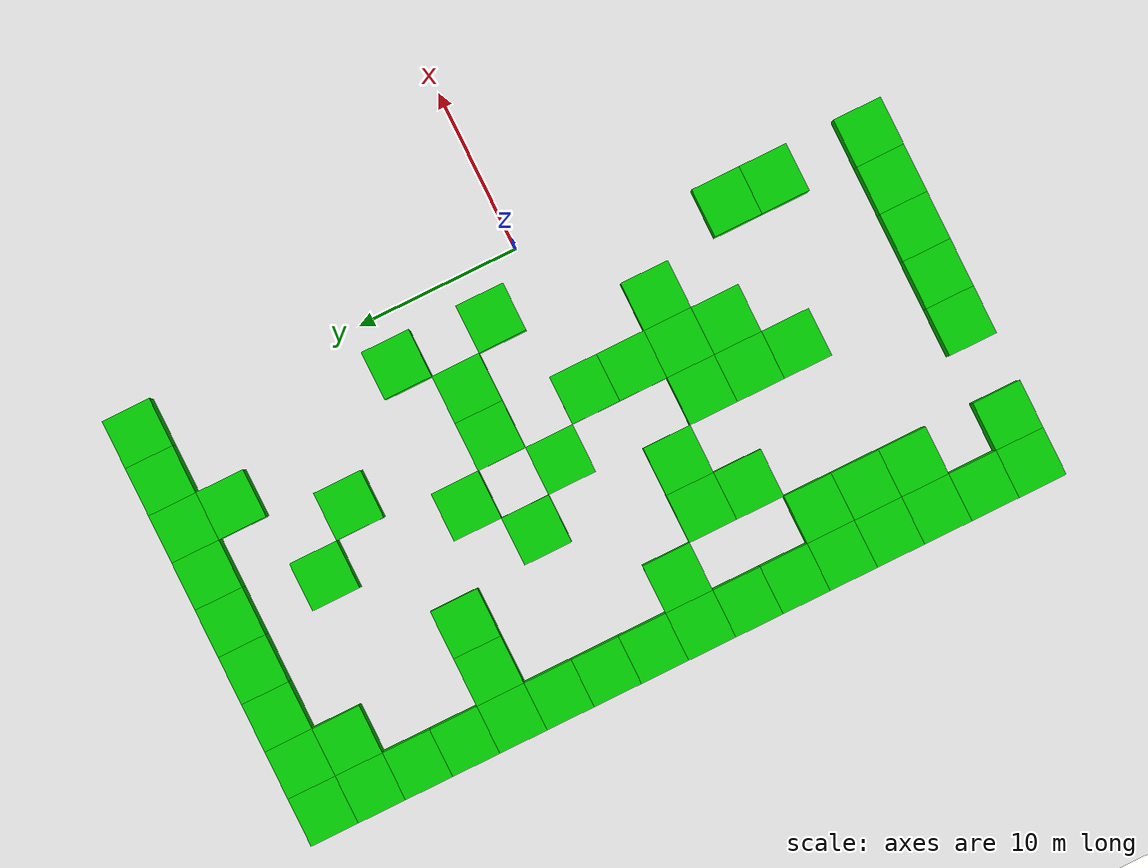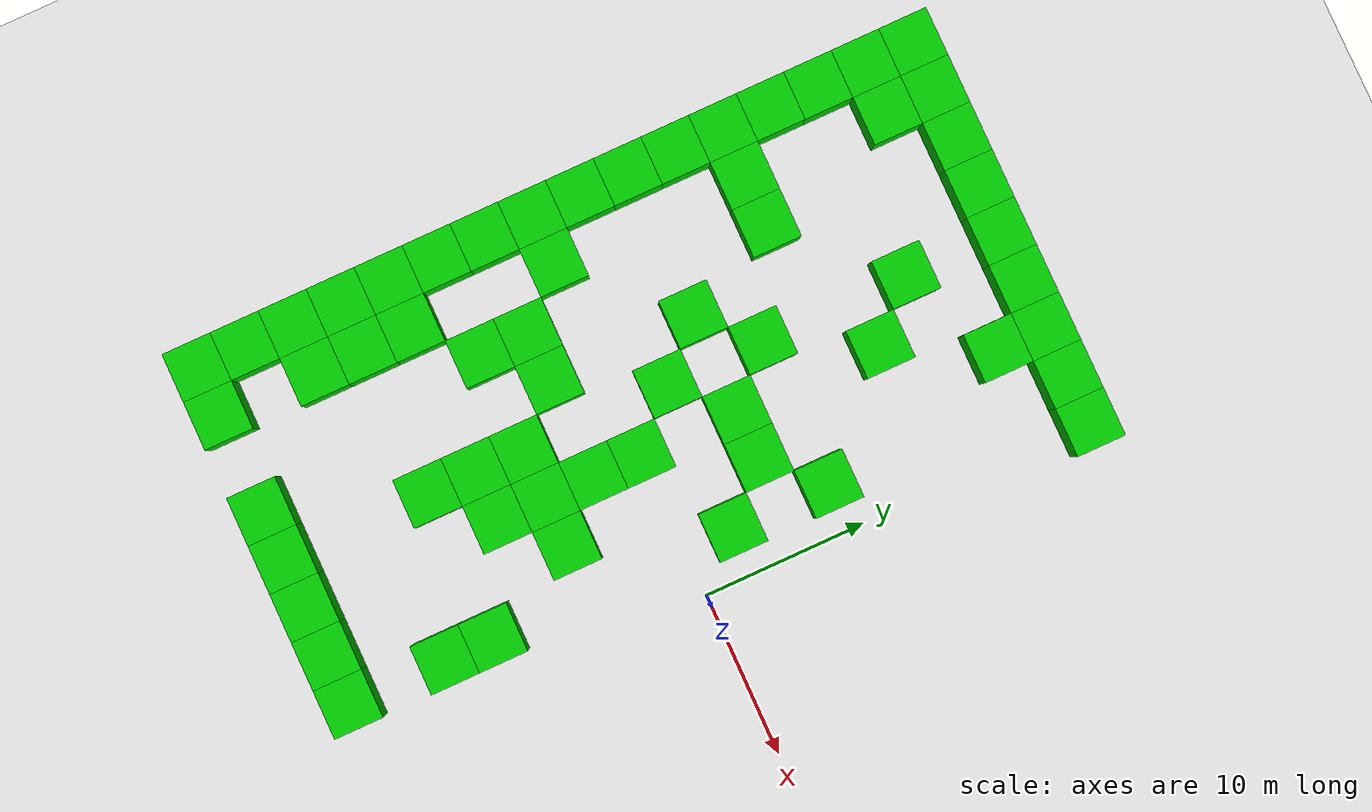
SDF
<sdf version="1.6">
 <world name="generated_maze">
  <model name="ground_plane">
   <static>true</static>
   <link name="link">
    <collision name="collision">
     <geometry><plane><normal>0 0 1</normal><size>300 300</size></plane></geometry>
    </collision>
    <visual name="visual">
     <geometry><plane><normal>0 0 1</normal><size>300 300</size></plane></geometry>
     <material>
      <ambient>0.9 0.9 0.9 1</ambient>
      <diffuse>0.9 0.9 0.9 1</diffuse>
      <specular>0.3 0.3 0.3 1</specular>
     </material>
    </visual>
   </link>
  </model>
  <model name="wall_0_0">
   <static>true</static>
   <pose>-24.0 24.0 1.00 0 0 0</pose>
   <link name="link">
    <collision name="collision"><geometry><box><size>3.0 3.0 2.0</size></box></geometry></collision>
    <visual name="visual">
     <geometry><box><size>3.0 3.0 2.0</size></box></geometry>
     <material>
      <ambient>0.0 0.8 0.0 1</ambient>
      <diffuse>0.0 0.8 0.0 1</diffuse>
      <specular>0.1 0.1 0.1 1</specular>
     </material>
    </visual>
   </link>
  </model>
  <model name="wall_0_1">
   <static>true</static>
   <pose>-21.0 24.0 1.00 0 0 0</pose>
   <link name="link">
    <collision name="collision"><geometry><box><size>3.0 3.0 2.0</size></box></geometry></collision>
    <visual name="visual">
     <geometry><box><size>3.0 3.0 2.0</size></box></geometry>
     <material>
      <ambient>0.0 0.8 0.0 1</ambient>
      <diffuse>0.0 0.8 0.0 1</diffuse>
      <specular>0.1 0.1 0.1 1</specular>
     </material>
    </visual>
   </link>
  </model>
  <model name="wall_0_2">
   <static>true</static>
   <pose>-18.0 24.0 1.00 0 0 0</pose>
   <link name="link">
    <collision name="collision"><geometry><box><size>3.0 3.0 2.0</size></box></geometry></collision>
    <visual name="visual">
     <geometry><box><size>3.0 3.0 2.0</size></box></geometry>
     <material>
      <ambient>0.0 0.8 0.0 1</ambient>
      <diffuse>0.0 0.8 0.0 1</diffuse>
      <specular>0.1 0.1 0.1 1</specular>
     </material>
    </visual>
   </link>
  </model>
  <model name="wall_0_3">
   <static>true</static>
   <pose>-15.0 24.0 1.00 0 0 0</pose>
   <link name="link">
    <collision name="collision"><geometry><box><size>3.0 3.0 2.0</size></box></geometry></collision>
    <visual name="visual">
     <geometry><box><size>3.0 3.0 2.0</size></box></geometry>
     <material>
      <ambient>0.0 0.8 0.0 1</ambient>
      <diffuse>0.0 0.8 0.0 1</diffuse>
      <specular>0.1 0.1 0.1 1</specular>
     </material>
    </visual>
   </link>
  </model>
  <model name="wall_0_4">
   <static>true</static>
   <pose>-12.0 24.0 1.00 0 0 0</pose>
   <link name="link">
    <collision name="collision"><geometry><box><size>3.0 3.0 2.0</size></box></geometry></collision>
    <visual name="visual">
     <geometry><box><size>3.0 3.0 2.0</size></box></geometry>
     <material>
      <ambient>0.0 0.8 0.0 1</ambient>
      <diffuse>0.0 0.8 0.0 1</diffuse>
      <specular>0.1 0.1 0.1 1</specular>
     </material>
    </visual>
   </link>
  </model>
  <model name="wall_0_5">
   <static>true</static>
   <pose>-9.0 24.0 1.00 0 0 0</pose>
   <link name="link">
    <collision name="collision"><geometry><box><size>3.0 3.0 2.0</size></box></geometry></collision>
    <visual name="visual">
     <geometry><box><size>3.0 3.0 2.0</size></box></geometry>
     <material>
      <ambient>0.0 0.8 0.0 1</ambient>
      <diffuse>0.0 0.8 0.0 1</diffuse>
      <specular>0.1 0.1 0.1 1</specular>
     </material>
    </visual>
   </link>
  </model>
  <model name="wall_0_6">
   <static>true</static>
   <pose>-6.0 24.0 1.00 0 0 0</pose>
   <link name="link">
    <collision name="collision"><geometry><box><size>3.0 3.0 2.0</size></box></geometry></collision>
    <visual name="visual">
     <geometry><box><size>3.0 3.0 2.0</size></box></geometry>
     <material>
      <ambient>0.0 0.8 0.0 1</ambient>
      <diffuse>0.0 0.8 0.0 1</diffuse>
      <specular>0.1 0.1 0.1 1</specular>
     </material>
    </visual>
   </link>
  </model>
  <model name="wall_0_7">
   <static>true</static>
   <pose>-3.0 24.0 1.00 0 0 0</pose>
   <link name="link">
    <collision name="collision"><geometry><box><size>3.0 3.0 2.0</size></box></geometry></collision>
    <visual name="visual">
     <geometry><box><size>3.0 3.0 2.0</size></box></geometry>
     <material>
      <ambient>0.0 0.8 0.0 1</ambient>
      <diffuse>0.0 0.8 0.0 1</diffuse>
      <specular>0.1 0.1 0.1 1</specular>
     </material>
    </visual>
   </link>
  </model>
  <model name="wall_0_8">
   <static>true</static>
   <pose>0.0 24.0 1.00 0 0 0</pose>
   <link name="link">
    <collision name="collision"><geometry><box><size>3.0 3.0 2.0</size></box></geometry></collision>
    <visual name="visual">
     <geometry><box><size>3.0 3.0 2.0</size></box></geometry>
     <material>
      <ambient>0.0 0.8 0.0 1</ambient>
      <diffuse>0.0 0.8 0.0 1</diffuse>
      <specular>0.1 0.1 0.1 1</specular>
     </material>
    </visual>
   </link>
  </model>
  <model name="wall_1_0">
   <static>true</static>
   <pose>-24.0 21.0 1.00 0 0 0</pose>
   <link name="link">
    <collision name="collision"><geometry><box><size>3.0 3.0 2.0</size></box></geometry></collision>
    <visual name="visual">
     <geometry><box><size>3.0 3.0 2.0</size></box></geometry>
     <material>
      <ambient>0.0 0.8 0.0 1</ambient>
      <diffuse>0.0 0.8 0.0 1</diffuse>
      <specular>0.1 0.1 0.1 1</specular>
     </material>
    </visual>
   </link>
  </model>
  <model name="wall_1_1">
   <static>true</static>
   <pose>-21.0 21.0 1.00 0 0 0</pose>
   <link name="link">
    <collision name="collision"><geometry><box><size>3.0 3.0 2.0</size></box></geometry></collision>
    <visual name="visual">
     <geometry><box><size>3.0 3.0 2.0</size></box></geometry>
     <material>
      <ambient>0.0 0.8 0.0 1</ambient>
      <diffuse>0.0 0.8 0.0 1</diffuse>
      <specular>0.1 0.1 0.1 1</specular>
     </material>
    </visual>
   </link>
  </model>
  <model name="wall_1_6">
   <static>true</static>
   <pose>-6.0 21.0 1.00 0 0 0</pose>
   <link name="link">
    <collision name="collision"><geometry><box><size>3.0 3.0 2.0</size></box></geometry></collision>
    <visual name="visual">
     <geometry><box><size>3.0 3.0 2.0</size></box></geometry>
     <material>
      <ambient>0.0 0.8 0.0 1</ambient>
      <diffuse>0.0 0.8 0.0 1</diffuse>
      <specular>0.1 0.1 0.1 1</specular>
     </material>
    </visual>
   </link>
  </model>
  <model name="wall_2_0">
   <static>true</static>
   <pose>-24.0 18.0 1.00 0 0 0</pose>
   <link name="link">
    <collision name="collision"><geometry><box><size>3.0 3.0 2.0</size></box></geometry></collision>
    <visual name="visual">
     <geometry><box><size>3.0 3.0 2.0</size></box></geometry>
     <material>
      <ambient>0.0 0.8 0.0 1</ambient>
      <diffuse>0.0 0.8 0.0 1</diffuse>
      <specular>0.1 0.1 0.1 1</specular>
     </material>
    </visual>
   </link>
  </model>
  <model name="wall_2_4">
   <static>true</static>
   <pose>-12.0 18.0 1.00 0 0 0</pose>
   <link name="link">
    <collision name="collision"><geometry><box><size>3.0 3.0 2.0</size></box></geometry></collision>
    <visual name="visual">
     <geometry><box><size>3.0 3.0 2.0</size></box></geometry>
     <material>
      <ambient>0.0 0.8 0.0 1</ambient>
      <diffuse>0.0 0.8 0.0 1</diffuse>
      <specular>0.1 0.1 0.1 1</specular>
     </material>
    </visual>
   </link>
  </model>
  <model name="wall_3_0">
   <static>true</static>
   <pose>-24.0 15.0 1.00 0 0 0</pose>
   <link name="link">
    <collision name="collision"><geometry><box><size>3.0 3.0 2.0</size></box></geometry></collision>
    <visual name="visual">
     <geometry><box><size>3.0 3.0 2.0</size></box></geometry>
     <material>
      <ambient>0.0 0.8 0.0 1</ambient>
      <diffuse>0.0 0.8 0.0 1</diffuse>
      <specular>0.1 0.1 0.1 1</specular>
     </material>
    </visual>
   </link>
  </model>
  <model name="wall_3_5">
   <static>true</static>
   <pose>-9.0 15.0 1.00 0 0 0</pose>
   <link name="link">
    <collision name="collision"><geometry><box><size>3.0 3.0 2.0</size></box></geometry></collision>
    <visual name="visual">
     <geometry><box><size>3.0 3.0 2.0</size></box></geometry>
     <material>
      <ambient>0.0 0.8 0.0 1</ambient>
      <diffuse>0.0 0.8 0.0 1</diffuse>
      <specular>0.1 0.1 0.1 1</specular>
     </material>
    </visual>
   </link>
  </model>
  <model name="wall_4_0">
   <static>true</static>
   <pose>-24.0 12.0 1.00 0 0 0</pose>
   <link name="link">
    <collision name="collision"><geometry><box><size>3.0 3.0 2.0</size></box></geometry></collision>
    <visual name="visual">
     <geometry><box><size>3.0 3.0 2.0</size></box></geometry>
     <material>
      <ambient>0.0 0.8 0.0 1</ambient>
      <diffuse>0.0 0.8 0.0 1</diffuse>
      <specular>0.1 0.1 0.1 1</specular>
     </material>
    </visual>
   </link>
  </model>
  <model name="wall_4_1">
   <static>true</static>
   <pose>-21.0 12.0 1.00 0 0 0</pose>
   <link name="link">
    <collision name="collision"><geometry><box><size>3.0 3.0 2.0</size></box></geometry></collision>
    <visual name="visual">
     <geometry><box><size>3.0 3.0 2.0</size></box></geometry>
     <material>
      <ambient>0.0 0.8 0.0 1</ambient>
      <diffuse>0.0 0.8 0.0 1</diffuse>
      <specular>0.1 0.1 0.1 1</specular>
     </material>
    </visual>
   </link>
  </model>
  <model name="wall_4_2">
   <static>true</static>
   <pose>-18.0 12.0 1.00 0 0 0</pose>
   <link name="link">
    <collision name="collision"><geometry><box><size>3.0 3.0 2.0</size></box></geometry></collision>
    <visual name="visual">
     <geometry><box><size>3.0 3.0 2.0</size></box></geometry>
     <material>
      <ambient>0.0 0.8 0.0 1</ambient>
      <diffuse>0.0 0.8 0.0 1</diffuse>
      <specular>0.1 0.1 0.1 1</specular>
     </material>
    </visual>
   </link>
  </model>
  <model name="wall_5_0">
   <static>true</static>
   <pose>-24.0 9.0 1.00 0 0 0</pose>
   <link name="link">
    <collision name="collision"><geometry><box><size>3.0 3.0 2.0</size></box></geometry></collision>
    <visual name="visual">
     <geometry><box><size>3.0 3.0 2.0</size></box></geometry>
     <material>
      <ambient>0.0 0.8 0.0 1</ambient>
      <diffuse>0.0 0.8 0.0 1</diffuse>
      <specular>0.1 0.1 0.1 1</specular>
     </material>
    </visual>
   </link>
  </model>
  <model name="wall_5_4">
   <static>true</static>
   <pose>-12.0 9.0 1.00 0 0 0</pose>
   <link name="link">
    <collision name="collision"><geometry><box><size>3.0 3.0 2.0</size></box></geometry></collision>
    <visual name="visual">
     <geometry><box><size>3.0 3.0 2.0</size></box></geometry>
     <material>
      <ambient>0.0 0.8 0.0 1</ambient>
      <diffuse>0.0 0.8 0.0 1</diffuse>
      <specular>0.1 0.1 0.1 1</specular>
     </material>
    </visual>
   </link>
  </model>
  <model name="wall_5_7">
   <static>true</static>
   <pose>-3.0 9.0 1.00 0 0 0</pose>
   <link name="link">
    <collision name="collision"><geometry><box><size>3.0 3.0 2.0</size></box></geometry></collision>
    <visual name="visual">
     <geometry><box><size>3.0 3.0 2.0</size></box></geometry>
     <material>
      <ambient>0.0 0.8 0.0 1</ambient>
      <diffuse>0.0 0.8 0.0 1</diffuse>
      <specular>0.1 0.1 0.1 1</specular>
     </material>
    </visual>
   </link>
  </model>
  <model name="wall_6_0">
   <static>true</static>
   <pose>-24.0 6.0 1.00 0 0 0</pose>
   <link name="link">
    <collision name="collision"><geometry><box><size>3.0 3.0 2.0</size></box></geometry></collision>
    <visual name="visual">
     <geometry><box><size>3.0 3.0 2.0</size></box></geometry>
     <material>
      <ambient>0.0 0.8 0.0 1</ambient>
      <diffuse>0.0 0.8 0.0 1</diffuse>
      <specular>0.1 0.1 0.1 1</specular>
     </material>
    </visual>
   </link>
  </model>
  <model name="wall_6_3">
   <static>true</static>
   <pose>-15.0 6.0 1.00 0 0 0</pose>
   <link name="link">
    <collision name="collision"><geometry><box><size>3.0 3.0 2.0</size></box></geometry></collision>
    <visual name="visual">
     <geometry><box><size>3.0 3.0 2.0</size></box></geometry>
     <material>
      <ambient>0.0 0.8 0.0 1</ambient>
      <diffuse>0.0 0.8 0.0 1</diffuse>
      <specular>0.1 0.1 0.1 1</specular>
     </material>
    </visual>
   </link>
  </model>
  <model name="wall_6_5">
   <static>true</static>
   <pose>-9.0 6.0 1.00 0 0 0</pose>
   <link name="link">
    <collision name="collision"><geometry><box><size>3.0 3.0 2.0</size></box></geometry></collision>
    <visual name="visual">
     <geometry><box><size>3.0 3.0 2.0</size></box></geometry>
     <material>
      <ambient>0.0 0.8 0.0 1</ambient>
      <diffuse>0.0 0.8 0.0 1</diffuse>
      <specular>0.1 0.1 0.1 1</specular>
     </material>
    </visual>
   </link>
  </model>
  <model name="wall_6_6">
   <static>true</static>
   <pose>-6.0 6.0 1.00 0 0 0</pose>
   <link name="link">
    <collision name="collision"><geometry><box><size>3.0 3.0 2.0</size></box></geometry></collision>
    <visual name="visual">
     <geometry><box><size>3.0 3.0 2.0</size></box></geometry>
     <material>
      <ambient>0.0 0.8 0.0 1</ambient>
      <diffuse>0.0 0.8 0.0 1</diffuse>
      <specular>0.1 0.1 0.1 1</specular>
     </material>
    </visual>
   </link>
  </model>
  <model name="wall_7_0">
   <static>true</static>
   <pose>-24.0 3.0 1.00 0 0 0</pose>
   <link name="link">
    <collision name="collision"><geometry><box><size>3.0 3.0 2.0</size></box></geometry></collision>
    <visual name="visual">
     <geometry><box><size>3.0 3.0 2.0</size></box></geometry>
     <material>
      <ambient>0.0 0.8 0.0 1</ambient>
      <diffuse>0.0 0.8 0.0 1</diffuse>
      <specular>0.1 0.1 0.1 1</specular>
     </material>
    </visual>
   </link>
  </model>
  <model name="wall_7_4">
   <static>true</static>
   <pose>-12.0 3.0 1.00 0 0 0</pose>
   <link name="link">
    <collision name="collision"><geometry><box><size>3.0 3.0 2.0</size></box></geometry></collision>
    <visual name="visual">
     <geometry><box><size>3.0 3.0 2.0</size></box></geometry>
     <material>
      <ambient>0.0 0.8 0.0 1</ambient>
      <diffuse>0.0 0.8 0.0 1</diffuse>
      <specular>0.1 0.1 0.1 1</specular>
     </material>
    </visual>
   </link>
  </model>
  <model name="wall_7_7">
   <static>true</static>
   <pose>-3.0 3.0 1.00 0 0 0</pose>
   <link name="link">
    <collision name="collision"><geometry><box><size>3.0 3.0 2.0</size></box></geometry></collision>
    <visual name="visual">
     <geometry><box><size>3.0 3.0 2.0</size></box></geometry>
     <material>
      <ambient>0.0 0.8 0.0 1</ambient>
      <diffuse>0.0 0.8 0.0 1</diffuse>
      <specular>0.1 0.1 0.1 1</specular>
     </material>
    </visual>
   </link>
  </model>
  <model name="wall_8_0">
   <static>true</static>
   <pose>-24.0 0.0 1.00 0 0 0</pose>
   <link name="link">
    <collision name="collision"><geometry><box><size>3.0 3.0 2.0</size></box></geometry></collision>
    <visual name="visual">
     <geometry><box><size>3.0 3.0 2.0</size></box></geometry>
     <material>
      <ambient>0.0 0.8 0.0 1</ambient>
      <diffuse>0.0 0.8 0.0 1</diffuse>
      <specular>0.1 0.1 0.1 1</specular>
     </material>
    </visual>
   </link>
  </model>
  <model name="wall_8_1">
   <static>true</static>
   <pose>-21.0 0.0 1.00 0 0 0</pose>
   <link name="link">
    <collision name="collision"><geometry><box><size>3.0 3.0 2.0</size></box></geometry></collision>
    <visual name="visual">
     <geometry><box><size>3.0 3.0 2.0</size></box></geometry>
     <material>
      <ambient>0.0 0.8 0.0 1</ambient>
      <diffuse>0.0 0.8 0.0 1</diffuse>
      <specular>0.1 0.1 0.1 1</specular>
     </material>
    </visual>
   </link>
  </model>
  <model name="wall_8_5">
   <static>true</static>
   <pose>-9.0 0.0 1.00 0 0 0</pose>
   <link name="link">
    <collision name="collision"><geometry><box><size>3.0 3.0 2.0</size></box></geometry></collision>
    <visual name="visual">
     <geometry><box><size>3.0 3.0 2.0</size></box></geometry>
     <material>
      <ambient>0.0 0.8 0.0 1</ambient>
      <diffuse>0.0 0.8 0.0 1</diffuse>
      <specular>0.1 0.1 0.1 1</specular>
     </material>
    </visual>
   </link>
  </model>
  <model name="wall_9_0">
   <static>true</static>
   <pose>-24.0 -3.0 1.00 0 0 0</pose>
   <link name="link">
    <collision name="collision"><geometry><box><size>3.0 3.0 2.0</size></box></geometry></collision>
    <visual name="visual">
     <geometry><box><size>3.0 3.0 2.0</size></box></geometry>
     <material>
      <ambient>0.0 0.8 0.0 1</ambient>
      <diffuse>0.0 0.8 0.0 1</diffuse>
      <specular>0.1 0.1 0.1 1</specular>
     </material>
    </visual>
   </link>
  </model>
  <model name="wall_9_2">
   <static>true</static>
   <pose>-18.0 -3.0 1.00 0 0 0</pose>
   <link name="link">
    <collision name="collision"><geometry><box><size>3.0 3.0 2.0</size></box></geometry></collision>
    <visual name="visual">
     <geometry><box><size>3.0 3.0 2.0</size></box></geometry>
     <material>
      <ambient>0.0 0.8 0.0 1</ambient>
      <diffuse>0.0 0.8 0.0 1</diffuse>
      <specular>0.1 0.1 0.1 1</specular>
     </material>
    </visual>
   </link>
  </model>
  <model name="wall_9_3">
   <static>true</static>
   <pose>-15.0 -3.0 1.00 0 0 0</pose>
   <link name="link">
    <collision name="collision"><geometry><box><size>3.0 3.0 2.0</size></box></geometry></collision>
    <visual name="visual">
     <geometry><box><size>3.0 3.0 2.0</size></box></geometry>
     <material>
      <ambient>0.0 0.8 0.0 1</ambient>
      <diffuse>0.0 0.8 0.0 1</diffuse>
      <specular>0.1 0.1 0.1 1</specular>
     </material>
    </visual>
   </link>
  </model>
  <model name="wall_9_5">
   <static>true</static>
   <pose>-9.0 -3.0 1.00 0 0 0</pose>
   <link name="link">
    <collision name="collision"><geometry><box><size>3.0 3.0 2.0</size></box></geometry></collision>
    <visual name="visual">
     <geometry><box><size>3.0 3.0 2.0</size></box></geometry>
     <material>
      <ambient>0.0 0.8 0.0 1</ambient>
      <diffuse>0.0 0.8 0.0 1</diffuse>
      <specular>0.1 0.1 0.1 1</specular>
     </material>
    </visual>
   </link>
  </model>
  <model name="wall_10_0">
   <static>true</static>
   <pose>-24.0 -6.0 1.00 0 0 0</pose>
   <link name="link">
    <collision name="collision"><geometry><box><size>3.0 3.0 2.0</size></box></geometry></collision>
    <visual name="visual">
     <geometry><box><size>3.0 3.0 2.0</size></box></geometry>
     <material>
      <ambient>0.0 0.8 0.0 1</ambient>
      <diffuse>0.0 0.8 0.0 1</diffuse>
      <specular>0.1 0.1 0.1 1</specular>
     </material>
    </visual>
   </link>
  </model>
  <model name="wall_10_2">
   <static>true</static>
   <pose>-18.0 -6.0 1.00 0 0 0</pose>
   <link name="link">
    <collision name="collision"><geometry><box><size>3.0 3.0 2.0</size></box></geometry></collision>
    <visual name="visual">
     <geometry><box><size>3.0 3.0 2.0</size></box></geometry>
     <material>
      <ambient>0.0 0.8 0.0 1</ambient>
      <diffuse>0.0 0.8 0.0 1</diffuse>
      <specular>0.1 0.1 0.1 1</specular>
     </material>
    </visual>
   </link>
  </model>
  <model name="wall_10_4">
   <static>true</static>
   <pose>-12.0 -6.0 1.00 0 0 0</pose>
   <link name="link">
    <collision name="collision"><geometry><box><size>3.0 3.0 2.0</size></box></geometry></collision>
    <visual name="visual">
     <geometry><box><size>3.0 3.0 2.0</size></box></geometry>
     <material>
      <ambient>0.0 0.8 0.0 1</ambient>
      <diffuse>0.0 0.8 0.0 1</diffuse>
      <specular>0.1 0.1 0.1 1</specular>
     </material>
    </visual>
   </link>
  </model>
  <model name="wall_10_5">
   <static>true</static>
   <pose>-9.0 -6.0 1.00 0 0 0</pose>
   <link name="link">
    <collision name="collision"><geometry><box><size>3.0 3.0 2.0</size></box></geometry></collision>
    <visual name="visual">
     <geometry><box><size>3.0 3.0 2.0</size></box></geometry>
     <material>
      <ambient>0.0 0.8 0.0 1</ambient>
      <diffuse>0.0 0.8 0.0 1</diffuse>
      <specular>0.1 0.1 0.1 1</specular>
     </material>
    </visual>
   </link>
  </model>
  <model name="wall_10_6">
   <static>true</static>
   <pose>-6.0 -6.0 1.00 0 0 0</pose>
   <link name="link">
    <collision name="collision"><geometry><box><size>3.0 3.0 2.0</size></box></geometry></collision>
    <visual name="visual">
     <geometry><box><size>3.0 3.0 2.0</size></box></geometry>
     <material>
      <ambient>0.0 0.8 0.0 1</ambient>
      <diffuse>0.0 0.8 0.0 1</diffuse>
      <specular>0.1 0.1 0.1 1</specular>
     </material>
    </visual>
   </link>
  </model>
  <model name="wall_11_0">
   <static>true</static>
   <pose>-24.0 -9.0 1.00 0 0 0</pose>
   <link name="link">
    <collision name="collision"><geometry><box><size>3.0 3.0 2.0</size></box></geometry></collision>
    <visual name="visual">
     <geometry><box><size>3.0 3.0 2.0</size></box></geometry>
     <material>
      <ambient>0.0 0.8 0.0 1</ambient>
      <diffuse>0.0 0.8 0.0 1</diffuse>
      <specular>0.1 0.1 0.1 1</specular>
     </material>
    </visual>
   </link>
  </model>
  <model name="wall_11_1">
   <static>true</static>
   <pose>-21.0 -9.0 1.00 0 0 0</pose>
   <link name="link">
    <collision name="collision"><geometry><box><size>3.0 3.0 2.0</size></box></geometry></collision>
    <visual name="visual">
     <geometry><box><size>3.0 3.0 2.0</size></box></geometry>
     <material>
      <ambient>0.0 0.8 0.0 1</ambient>
      <diffuse>0.0 0.8 0.0 1</diffuse>
      <specular>0.1 0.1 0.1 1</specular>
     </material>
    </visual>
   </link>
  </model>
  <model name="wall_11_4">
   <static>true</static>
   <pose>-12.0 -9.0 1.00 0 0 0</pose>
   <link name="link">
    <collision name="collision"><geometry><box><size>3.0 3.0 2.0</size></box></geometry></collision>
    <visual name="visual">
     <geometry><box><size>3.0 3.0 2.0</size></box></geometry>
     <material>
      <ambient>0.0 0.8 0.0 1</ambient>
      <diffuse>0.0 0.8 0.0 1</diffuse>
      <specular>0.1 0.1 0.1 1</specular>
     </material>
    </visual>
   </link>
  </model>
  <model name="wall_11_5">
   <static>true</static>
   <pose>-9.0 -9.0 1.00 0 0 0</pose>
   <link name="link">
    <collision name="collision"><geometry><box><size>3.0 3.0 2.0</size></box></geometry></collision>
    <visual name="visual">
     <geometry><box><size>3.0 3.0 2.0</size></box></geometry>
     <material>
      <ambient>0.0 0.8 0.0 1</ambient>
      <diffuse>0.0 0.8 0.0 1</diffuse>
      <specular>0.1 0.1 0.1 1</specular>
     </material>
    </visual>
   </link>
  </model>
  <model name="wall_12_0">
   <static>true</static>
   <pose>-24.0 -12.0 1.00 0 0 0</pose>
   <link name="link">
    <collision name="collision"><geometry><box><size>3.0 3.0 2.0</size></box></geometry></collision>
    <visual name="visual">
     <geometry><box><size>3.0 3.0 2.0</size></box></geometry>
     <material>
      <ambient>0.0 0.8 0.0 1</ambient>
      <diffuse>0.0 0.8 0.0 1</diffuse>
      <specular>0.1 0.1 0.1 1</specular>
     </material>
    </visual>
   </link>
  </model>
  <model name="wall_12_1">
   <static>true</static>
   <pose>-21.0 -12.0 1.00 0 0 0</pose>
   <link name="link">
    <collision name="collision"><geometry><box><size>3.0 3.0 2.0</size></box></geometry></collision>
    <visual name="visual">
     <geometry><box><size>3.0 3.0 2.0</size></box></geometry>
     <material>
      <ambient>0.0 0.8 0.0 1</ambient>
      <diffuse>0.0 0.8 0.0 1</diffuse>
      <specular>0.1 0.1 0.1 1</specular>
     </material>
    </visual>
   </link>
  </model>
  <model name="wall_12_4">
   <static>true</static>
   <pose>-12.0 -12.0 1.00 0 0 0</pose>
   <link name="link">
    <collision name="collision"><geometry><box><size>3.0 3.0 2.0</size></box></geometry></collision>
    <visual name="visual">
     <geometry><box><size>3.0 3.0 2.0</size></box></geometry>
     <material>
      <ambient>0.0 0.8 0.0 1</ambient>
      <diffuse>0.0 0.8 0.0 1</diffuse>
      <specular>0.1 0.1 0.1 1</specular>
     </material>
    </visual>
   </link>
  </model>
  <model name="wall_12_7">
   <static>true</static>
   <pose>-3.0 -12.0 1.00 0 0 0</pose>
   <link name="link">
    <collision name="collision"><geometry><box><size>3.0 3.0 2.0</size></box></geometry></collision>
    <visual name="visual">
     <geometry><box><size>3.0 3.0 2.0</size></box></geometry>
     <material>
      <ambient>0.0 0.8 0.0 1</ambient>
      <diffuse>0.0 0.8 0.0 1</diffuse>
      <specular>0.1 0.1 0.1 1</specular>
     </material>
    </visual>
   </link>
  </model>
  <model name="wall_13_0">
   <static>true</static>
   <pose>-24.0 -15.0 1.00 0 0 0</pose>
   <link name="link">
    <collision name="collision"><geometry><box><size>3.0 3.0 2.0</size></box></geometry></collision>
    <visual name="visual">
     <geometry><box><size>3.0 3.0 2.0</size></box></geometry>
     <material>
      <ambient>0.0 0.8 0.0 1</ambient>
      <diffuse>0.0 0.8 0.0 1</diffuse>
      <specular>0.1 0.1 0.1 1</specular>
     </material>
    </visual>
   </link>
  </model>
  <model name="wall_13_1">
   <static>true</static>
   <pose>-21.0 -15.0 1.00 0 0 0</pose>
   <link name="link">
    <collision name="collision"><geometry><box><size>3.0 3.0 2.0</size></box></geometry></collision>
    <visual name="visual">
     <geometry><box><size>3.0 3.0 2.0</size></box></geometry>
     <material>
      <ambient>0.0 0.8 0.0 1</ambient>
      <diffuse>0.0 0.8 0.0 1</diffuse>
      <specular>0.1 0.1 0.1 1</specular>
     </material>
    </visual>
   </link>
  </model>
  <model name="wall_13_7">
   <static>true</static>
   <pose>-3.0 -15.0 1.00 0 0 0</pose>
   <link name="link">
    <collision name="collision"><geometry><box><size>3.0 3.0 2.0</size></box></geometry></collision>
    <visual name="visual">
     <geometry><box><size>3.0 3.0 2.0</size></box></geometry>
     <material>
      <ambient>0.0 0.8 0.0 1</ambient>
      <diffuse>0.0 0.8 0.0 1</diffuse>
      <specular>0.1 0.1 0.1 1</specular>
     </material>
    </visual>
   </link>
  </model>
  <model name="wall_14_0">
   <static>true</static>
   <pose>-24.0 -18.0 1.00 0 0 0</pose>
   <link name="link">
    <collision name="collision"><geometry><box><size>3.0 3.0 2.0</size></box></geometry></collision>
    <visual name="visual">
     <geometry><box><size>3.0 3.0 2.0</size></box></geometry>
     <material>
      <ambient>0.0 0.8 0.0 1</ambient>
      <diffuse>0.0 0.8 0.0 1</diffuse>
      <specular>0.1 0.1 0.1 1</specular>
     </material>
    </visual>
   </link>
  </model>
  <model name="wall_15_0">
   <static>true</static>
   <pose>-24.0 -21.0 1.00 0 0 0</pose>
   <link name="link">
    <collision name="collision"><geometry><box><size>3.0 3.0 2.0</size></box></geometry></collision>
    <visual name="visual">
     <geometry><box><size>3.0 3.0 2.0</size></box></geometry>
     <material>
      <ambient>0.0 0.8 0.0 1</ambient>
      <diffuse>0.0 0.8 0.0 1</diffuse>
      <specular>0.1 0.1 0.1 1</specular>
     </material>
    </visual>
   </link>
  </model>
  <model name="wall_15_1">
   <static>true</static>
   <pose>-21.0 -21.0 1.00 0 0 0</pose>
   <link name="link">
    <collision name="collision"><geometry><box><size>3.0 3.0 2.0</size></box></geometry></collision>
    <visual name="visual">
     <geometry><box><size>3.0 3.0 2.0</size></box></geometry>
     <material>
      <ambient>0.0 0.8 0.0 1</ambient>
      <diffuse>0.0 0.8 0.0 1</diffuse>
      <specular>0.1 0.1 0.1 1</specular>
     </material>
    </visual>
   </link>
  </model>
  <model name="wall_15_3">
   <static>true</static>
   <pose>-15.0 -21.0 1.00 0 0 0</pose>
   <link name="link">
    <collision name="collision"><geometry><box><size>3.0 3.0 2.0</size></box></geometry></collision>
    <visual name="visual">
     <geometry><box><size>3.0 3.0 2.0</size></box></geometry>
     <material>
      <ambient>0.0 0.8 0.0 1</ambient>
      <diffuse>0.0 0.8 0.0 1</diffuse>
      <specular>0.1 0.1 0.1 1</specular>
     </material>
    </visual>
   </link>
  </model>
  <model name="wall_15_4">
   <static>true</static>
   <pose>-12.0 -21.0 1.00 0 0 0</pose>
   <link name="link">
    <collision name="collision"><geometry><box><size>3.0 3.0 2.0</size></box></geometry></collision>
    <visual name="visual">
     <geometry><box><size>3.0 3.0 2.0</size></box></geometry>
     <material>
      <ambient>0.0 0.8 0.0 1</ambient>
      <diffuse>0.0 0.8 0.0 1</diffuse>
      <specular>0.1 0.1 0.1 1</specular>
     </material>
    </visual>
   </link>
  </model>
  <model name="wall_15_5">
   <static>true</static>
   <pose>-9.0 -21.0 1.00 0 0 0</pose>
   <link name="link">
    <collision name="collision"><geometry><box><size>3.0 3.0 2.0</size></box></geometry></collision>
    <visual name="visual">
     <geometry><box><size>3.0 3.0 2.0</size></box></geometry>
     <material>
      <ambient>0.0 0.8 0.0 1</ambient>
      <diffuse>0.0 0.8 0.0 1</diffuse>
      <specular>0.1 0.1 0.1 1</specular>
     </material>
    </visual>
   </link>
  </model>
  <model name="wall_15_6">
   <static>true</static>
   <pose>-6.0 -21.0 1.00 0 0 0</pose>
   <link name="link">
    <collision name="collision"><geometry><box><size>3.0 3.0 2.0</size></box></geometry></collision>
    <visual name="visual">
     <geometry><box><size>3.0 3.0 2.0</size></box></geometry>
     <material>
      <ambient>0.0 0.8 0.0 1</ambient>
      <diffuse>0.0 0.8 0.0 1</diffuse>
      <specular>0.1 0.1 0.1 1</specular>
     </material>
    </visual>
   </link>
  </model>
  <model name="wall_15_7">
   <static>true</static>
   <pose>-3.0 -21.0 1.00 0 0 0</pose>
   <link name="link">
    <collision name="collision"><geometry><box><size>3.0 3.0 2.0</size></box></geometry></collision>
    <visual name="visual">
     <geometry><box><size>3.0 3.0 2.0</size></box></geometry>
     <material>
      <ambient>0.0 0.8 0.0 1</ambient>
      <diffuse>0.0 0.8 0.0 1</diffuse>
      <specular>0.1 0.1 0.1 1</specular>
     </material>
    </visual>
   </link>
  </model>
 </world>
</sdf>
